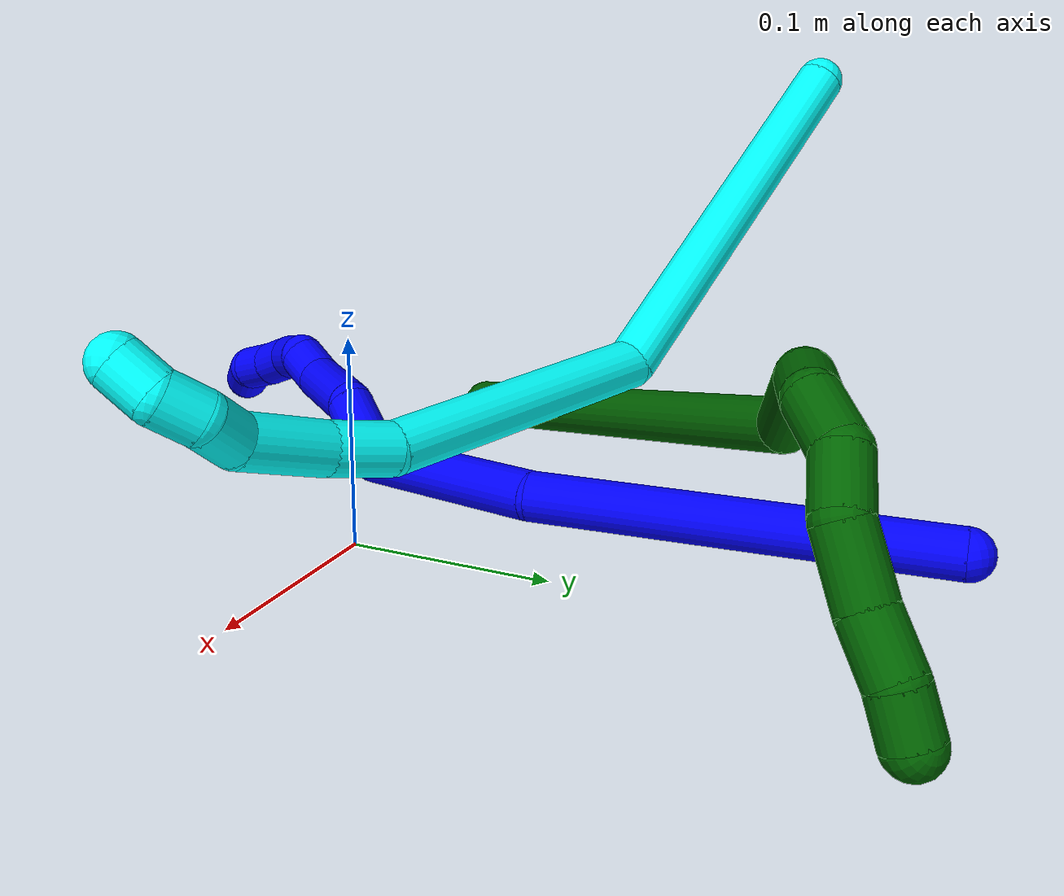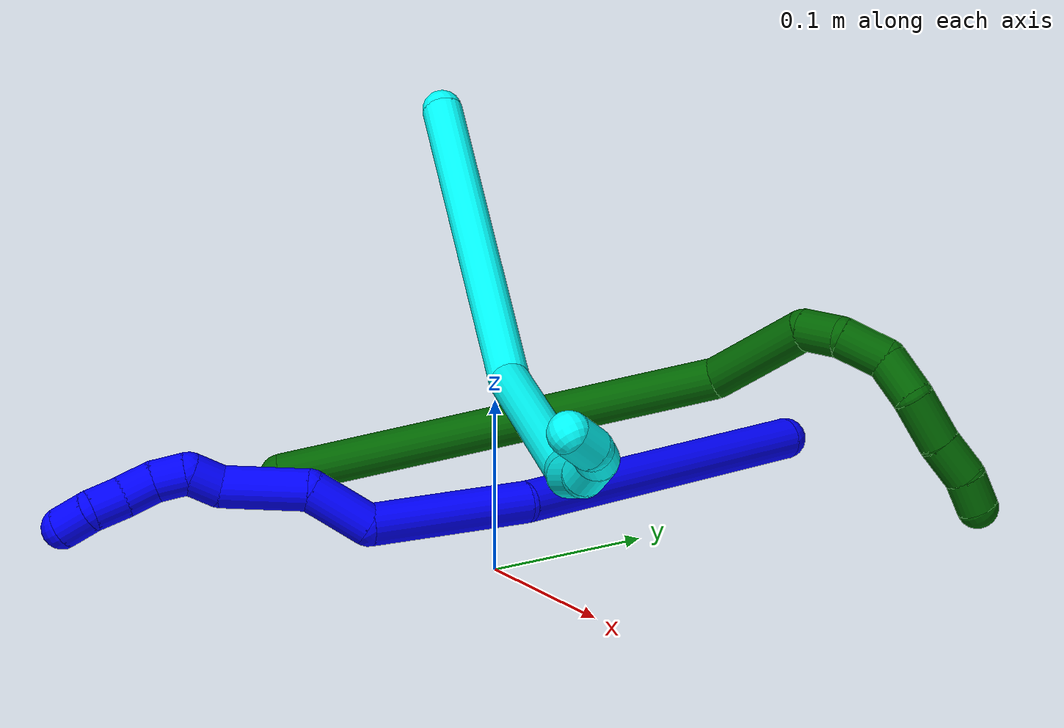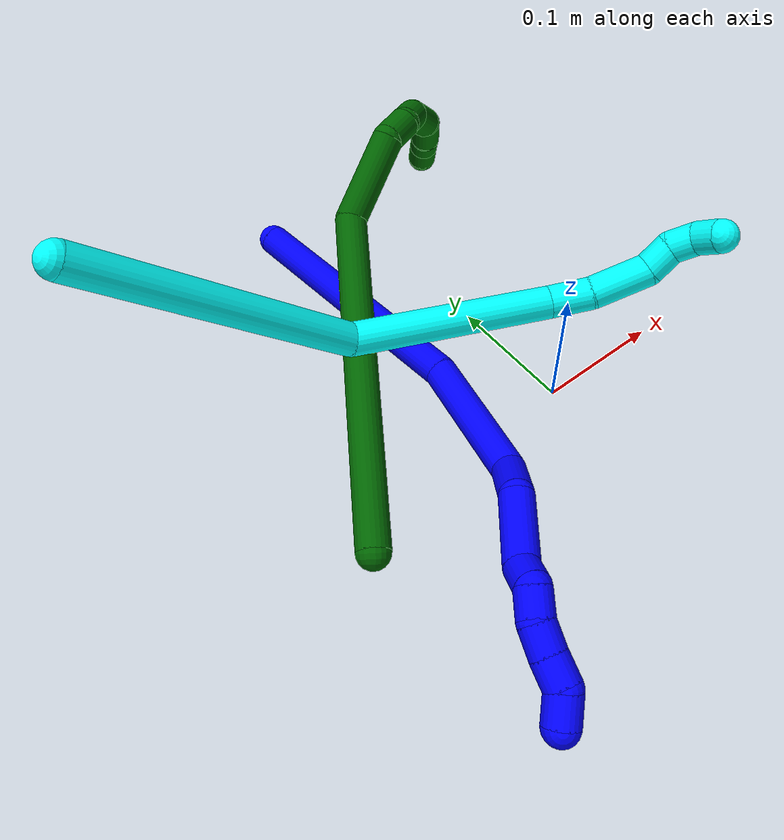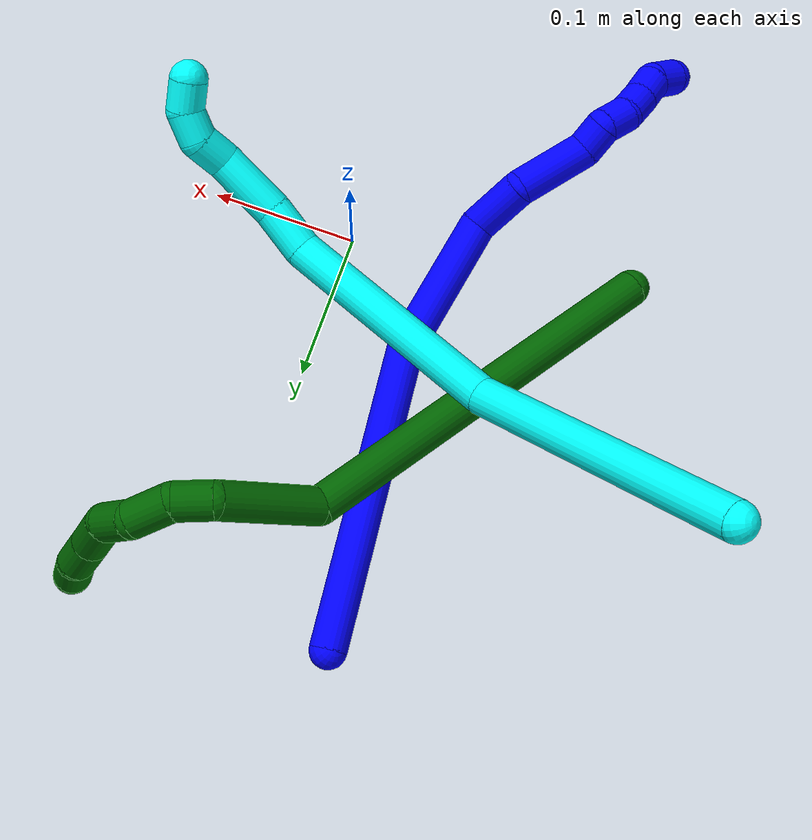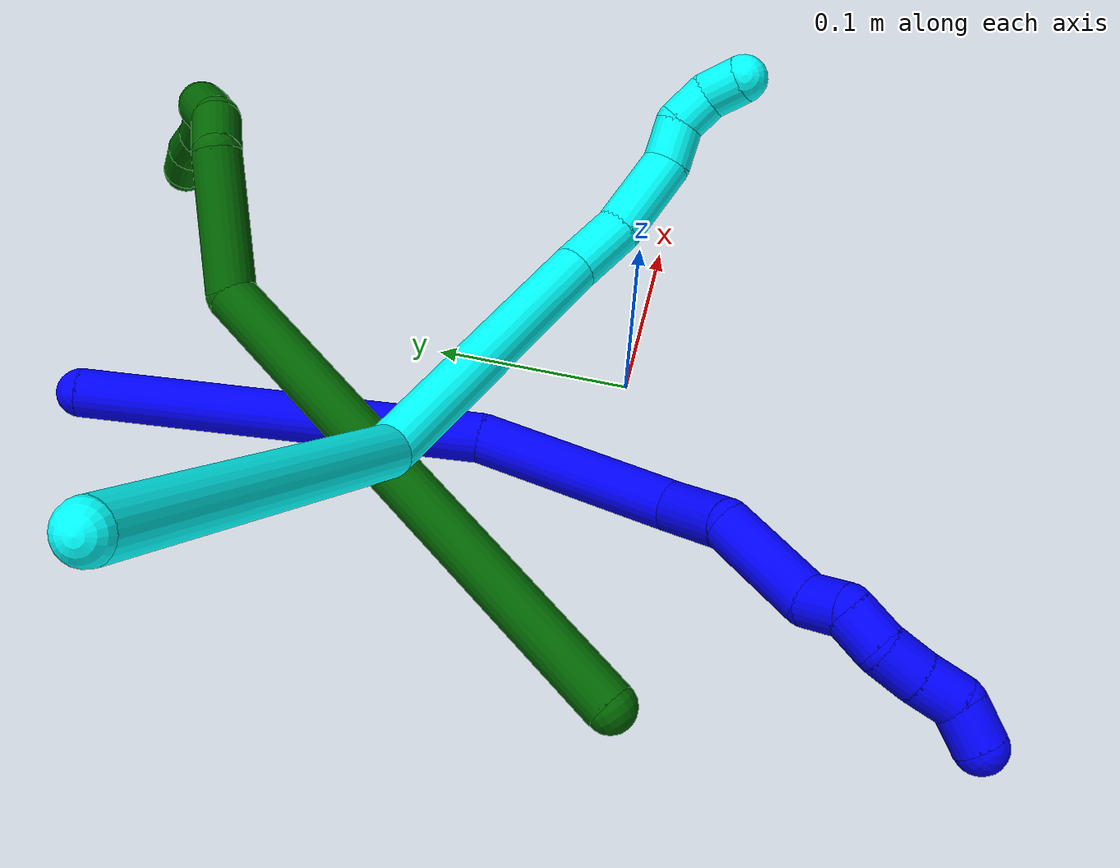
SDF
<sdf version="1.7">
 <world name="default">
  <model name="1">
   <static>0</static>
   <link name="1">
    <collision name="collision-cylinder-e_1_1_4">
     <pose>0.017731 -0.095347 0.035401 1.21529 0.172601 0.120183</pose>
     <geometry><cylinder><radius>0.0125</radius><length>0.206483</length></cylinder></geometry>
     <surface>
      <friction><ode><mu>1.16</mu><mu2>1.16</mu2><slip1>0</slip1><slip2>0</slip2></ode></friction>
      <contact><ode><kp>1e+06</kp><kd>1</kd><max_vel>0</max_vel><min_depth>0.001</min_depth></ode></contact>
     </surface>
    </collision>
    <visual name="visual-cylinder-e_1_1_4">
     <pose>0.017731 -0.095347 0.035401 1.21529 0.172601 0.120183</pose>
     <geometry><cylinder><radius>0.0125</radius><length>0.206483</length></cylinder></geometry>
     <material><ambient>0 0 1 1</ambient></material>
    </visual>
    <collision name="collision-cylinder-e_2_4_5">
     <pose>0.031069 -0.235644 0.091899 1.13198 -0.088247 -0.056088</pose>
     <geometry><cylinder><radius>0.0125</radius><length>0.099696</length></cylinder></geometry>
     <surface>
      <friction><ode><mu>1.16</mu><mu2>1.16</mu2><slip1>0</slip1><slip2>0</slip2></ode></friction>
      <contact><ode><kp>1e+06</kp><kd>1</kd><max_vel>0</max_vel><min_depth>0.001</min_depth></ode></contact>
     </surface>
    </collision>
    <visual name="visual-cylinder-e_2_4_5">
     <pose>0.031069 -0.235644 0.091899 1.13198 -0.088247 -0.056088</pose>
     <geometry><cylinder><radius>0.0125</radius><length>0.099696</length></cylinder></geometry>
     <material><ambient>0 0 1 1</ambient></material>
    </visual>
    <collision name="collision-cylinder-e_3_5_6">
     <pose>0.022548 -0.288642 0.13057 0.429436 -0.210375 -0.04604</pose>
     <geometry><cylinder><radius>0.0125</radius><length>0.039532</length></cylinder></geometry>
     <surface>
      <friction><ode><mu>1.16</mu><mu2>1.16</mu2><slip1>0</slip1><slip2>0</slip2></ode></friction>
      <contact><ode><kp>1e+06</kp><kd>1</kd><max_vel>0</max_vel><min_depth>0.001</min_depth></ode></contact>
     </surface>
    </collision>
    <visual name="visual-cylinder-e_3_5_6">
     <pose>0.022548 -0.288642 0.13057 0.429436 -0.210375 -0.04604</pose>
     <geometry><cylinder><radius>0.0125</radius><length>0.039532</length></cylinder></geometry>
     <material><ambient>0 0 1 1</ambient></material>
    </visual>
    <collision name="collision-cylinder-e_4_6_7">
     <pose>0.005068 -0.314291 0.162009 0.90361 -0.53746 -0.265711</pose>
     <geometry><cylinder><radius>0.0125</radius><length>0.052163</length></cylinder></geometry>
     <surface>
      <friction><ode><mu>1.16</mu><mu2>1.16</mu2><slip1>0</slip1><slip2>0</slip2></ode></friction>
      <contact><ode><kp>1e+06</kp><kd>1</kd><max_vel>0</max_vel><min_depth>0.001</min_depth></ode></contact>
     </surface>
    </collision>
    <visual name="visual-cylinder-e_4_6_7">
     <pose>0.005068 -0.314291 0.162009 0.90361 -0.53746 -0.265711</pose>
     <geometry><cylinder><radius>0.0125</radius><length>0.052163</length></cylinder></geometry>
     <material><ambient>0 0 1 1</ambient></material>
    </visual>
    <collision name="collision-cylinder-e_5_7_8">
     <pose>-0.009372 -0.337609 0.184198 0.601823 -0.107201 -0.033297</pose>
     <geometry><cylinder><radius>0.0125</radius><length>0.020318</length></cylinder></geometry>
     <surface>
      <friction><ode><mu>1.16</mu><mu2>1.16</mu2><slip1>0</slip1><slip2>0</slip2></ode></friction>
      <contact><ode><kp>1e+06</kp><kd>1</kd><max_vel>0</max_vel><min_depth>0.001</min_depth></ode></contact>
     </surface>
    </collision>
    <visual name="visual-cylinder-e_5_7_8">
     <pose>-0.009372 -0.337609 0.184198 0.601823 -0.107201 -0.033297</pose>
     <geometry><cylinder><radius>0.0125</radius><length>0.020318</length></cylinder></geometry>
     <material><ambient>0 0 1 1</ambient></material>
    </visual>
    <collision name="collision-cylinder-e_6_8_9">
     <pose>-0.01613 -0.351374 0.195424 1.22494 -0.585535 -0.417401</pose>
     <geometry><cylinder><radius>0.0125</radius><length>0.020524</length></cylinder></geometry>
     <surface>
      <friction><ode><mu>1.16</mu><mu2>1.16</mu2><slip1>0</slip1><slip2>0</slip2></ode></friction>
      <contact><ode><kp>1e+06</kp><kd>1</kd><max_vel>0</max_vel><min_depth>0.001</min_depth></ode></contact>
     </surface>
    </collision>
    <visual name="visual-cylinder-e_6_8_9">
     <pose>-0.01613 -0.351374 0.195424 1.22494 -0.585535 -0.417401</pose>
     <geometry><cylinder><radius>0.0125</radius><length>0.020524</length></cylinder></geometry>
     <material><ambient>0 0 1 1</ambient></material>
    </visual>
    <collision name="collision-cylinder-e_7_9_10">
     <pose>-0.025073 -0.368917 0.199347 1.46337 -0.330038 -0.29688</pose>
     <geometry><cylinder><radius>0.0125</radius><length>0.020192</length></cylinder></geometry>
     <surface>
      <friction><ode><mu>1.16</mu><mu2>1.16</mu2><slip1>0</slip1><slip2>0</slip2></ode></friction>
      <contact><ode><kp>1e+06</kp><kd>1</kd><max_vel>0</max_vel><min_depth>0.001</min_depth></ode></contact>
     </surface>
    </collision>
    <visual name="visual-cylinder-e_7_9_10">
     <pose>-0.025073 -0.368917 0.199347 1.46337 -0.330038 -0.29688</pose>
     <geometry><cylinder><radius>0.0125</radius><length>0.020192</length></cylinder></geometry>
     <material><ambient>0 0 1 1</ambient></material>
    </visual>
    <collision name="collision-cylinder-e_8_10_11">
     <pose>-0.030863 -0.388068 0.202064 1.39728 -0.251373 -0.211472</pose>
     <geometry><cylinder><radius>0.0125</radius><length>0.020241</length></cylinder></geometry>
     <surface>
      <friction><ode><mu>1.16</mu><mu2>1.16</mu2><slip1>0</slip1><slip2>0</slip2></ode></friction>
      <contact><ode><kp>1e+06</kp><kd>1</kd><max_vel>0</max_vel><min_depth>0.001</min_depth></ode></contact>
     </surface>
    </collision>
    <visual name="visual-cylinder-e_8_10_11">
     <pose>-0.030863 -0.388068 0.202064 1.39728 -0.251373 -0.211472</pose>
     <geometry><cylinder><radius>0.0125</radius><length>0.020241</length></cylinder></geometry>
     <material><ambient>0 0 1 1</ambient></material>
    </visual>
    <collision name="collision-cylinder-e_9_11_2">
     <pose>-0.040684 -0.405158 0.203509 1.60405 -0.776213 -0.799793</pose>
     <geometry><cylinder><radius>0.0125</radius><length>0.02085</length></cylinder></geometry>
     <surface>
      <friction><ode><mu>1.16</mu><mu2>1.16</mu2><slip1>0</slip1><slip2>0</slip2></ode></friction>
      <contact><ode><kp>1e+06</kp><kd>1</kd><max_vel>0</max_vel><min_depth>0.001</min_depth></ode></contact>
     </surface>
    </collision>
    <visual name="visual-cylinder-e_9_11_2">
     <pose>-0.040684 -0.405158 0.203509 1.60405 -0.776213 -0.799793</pose>
     <geometry><cylinder><radius>0.0125</radius><length>0.02085</length></cylinder></geometry>
     <material><ambient>0 0 1 1</ambient></material>
    </visual>
    <collision name="collision-sphere-2">
     <pose>-0.047987 -0.412593 0.203261 0 -0 0</pose>
     <geometry><sphere><radius>0.0125</radius></sphere></geometry>
     <surface>
      <friction><ode><mu>1.16</mu><mu2>1.16</mu2><slip1>0</slip1><slip2>0</slip2></ode></friction>
      <contact><ode><kp>1e+06</kp><kd>1</kd><max_vel>0</max_vel><min_depth>0.001</min_depth></ode></contact>
     </surface>
    </collision>
    <visual name="visual-sphere-2">
     <pose>-0.047987 -0.412593 0.203261 0 -0 0</pose>
     <geometry><sphere><radius>0.0125</radius></sphere></geometry>
     <material><ambient>0 0 1 1</ambient></material>
    </visual>
    <collision name="collision-sphere-11">
     <pose>-0.03338 -0.397724 0.203756 0 -0 0</pose>
     <geometry><sphere><radius>0.0125</radius></sphere></geometry>
     <surface>
      <friction><ode><mu>1.16</mu><mu2>1.16</mu2><slip1>0</slip1><slip2>0</slip2></ode></friction>
      <contact><ode><kp>1e+06</kp><kd>1</kd><max_vel>0</max_vel><min_depth>0.001</min_depth></ode></contact>
     </surface>
    </collision>
    <visual name="visual-sphere-11">
     <pose>-0.03338 -0.397724 0.203756 0 -0 0</pose>
     <geometry><sphere><radius>0.0125</radius></sphere></geometry>
     <material><ambient>0 0 1 1</ambient></material>
    </visual>
    <collision name="collision-sphere-10">
     <pose>-0.028345 -0.378413 0.200371 0 -0 0</pose>
     <geometry><sphere><radius>0.0125</radius></sphere></geometry>
     <surface>
      <friction><ode><mu>1.16</mu><mu2>1.16</mu2><slip1>0</slip1><slip2>0</slip2></ode></friction>
      <contact><ode><kp>1e+06</kp><kd>1</kd><max_vel>0</max_vel><min_depth>0.001</min_depth></ode></contact>
     </surface>
    </collision>
    <visual name="visual-sphere-10">
     <pose>-0.028345 -0.378413 0.200371 0 -0 0</pose>
     <geometry><sphere><radius>0.0125</radius></sphere></geometry>
     <material><ambient>0 0 1 1</ambient></material>
    </visual>
    <collision name="collision-sphere-9">
     <pose>-0.021801 -0.35942 0.198323 0 -0 0</pose>
     <geometry><sphere><radius>0.0125</radius></sphere></geometry>
     <surface>
      <friction><ode><mu>1.16</mu><mu2>1.16</mu2><slip1>0</slip1><slip2>0</slip2></ode></friction>
      <contact><ode><kp>1e+06</kp><kd>1</kd><max_vel>0</max_vel><min_depth>0.001</min_depth></ode></contact>
     </surface>
    </collision>
    <visual name="visual-sphere-9">
     <pose>-0.021801 -0.35942 0.198323 0 -0 0</pose>
     <geometry><sphere><radius>0.0125</radius></sphere></geometry>
     <material><ambient>0 0 1 1</ambient></material>
    </visual>
    <collision name="collision-sphere-4">
     <pose>0.035462 -0.190695 0.070802 0 -0 0</pose>
     <geometry><sphere><radius>0.0125</radius></sphere></geometry>
     <surface>
      <friction><ode><mu>1.16</mu><mu2>1.16</mu2><slip1>0</slip1><slip2>0</slip2></ode></friction>
      <contact><ode><kp>1e+06</kp><kd>1</kd><max_vel>0</max_vel><min_depth>0.001</min_depth></ode></contact>
     </surface>
    </collision>
    <visual name="visual-sphere-4">
     <pose>0.035462 -0.190695 0.070802 0 -0 0</pose>
     <geometry><sphere><radius>0.0125</radius></sphere></geometry>
     <material><ambient>0 0 1 1</ambient></material>
    </visual>
    <collision name="collision-sphere-1">
     <geometry><sphere><radius>0.0125</radius></sphere></geometry>
     <surface>
      <friction><ode><mu>1.16</mu><mu2>1.16</mu2><slip1>0</slip1><slip2>0</slip2></ode></friction>
      <contact><ode><kp>1e+06</kp><kd>1</kd><max_vel>0</max_vel><min_depth>0.001</min_depth></ode></contact>
     </surface>
    </collision>
    <visual name="visual-sphere-1">
     <geometry><sphere><radius>0.0125</radius></sphere></geometry>
     <material><ambient>0 0 1 1</ambient></material>
    </visual>
    <collision name="collision-sphere-8">
     <pose>-0.010459 -0.343328 0.192524 0 -0 0</pose>
     <geometry><sphere><radius>0.0125</radius></sphere></geometry>
     <surface>
      <friction><ode><mu>1.16</mu><mu2>1.16</mu2><slip1>0</slip1><slip2>0</slip2></ode></friction>
      <contact><ode><kp>1e+06</kp><kd>1</kd><max_vel>0</max_vel><min_depth>0.001</min_depth></ode></contact>
     </surface>
    </collision>
    <visual name="visual-sphere-8">
     <pose>-0.010459 -0.343328 0.192524 0 -0 0</pose>
     <geometry><sphere><radius>0.0125</radius></sphere></geometry>
     <material><ambient>0 0 1 1</ambient></material>
    </visual>
    <collision name="collision-sphere-5">
     <pose>0.026676 -0.280594 0.112995 0 -0 0</pose>
     <geometry><sphere><radius>0.0125</radius></sphere></geometry>
     <surface>
      <friction><ode><mu>1.16</mu><mu2>1.16</mu2><slip1>0</slip1><slip2>0</slip2></ode></friction>
      <contact><ode><kp>1e+06</kp><kd>1</kd><max_vel>0</max_vel><min_depth>0.001</min_depth></ode></contact>
     </surface>
    </collision>
    <visual name="visual-sphere-5">
     <pose>0.026676 -0.280594 0.112995 0 -0 0</pose>
     <geometry><sphere><radius>0.0125</radius></sphere></geometry>
     <material><ambient>0 0 1 1</ambient></material>
    </visual>
    <collision name="collision-sphere-6">
     <pose>0.01842 -0.296691 0.148145 0 -0 0</pose>
     <geometry><sphere><radius>0.0125</radius></sphere></geometry>
     <surface>
      <friction><ode><mu>1.16</mu><mu2>1.16</mu2><slip1>0</slip1><slip2>0</slip2></ode></friction>
      <contact><ode><kp>1e+06</kp><kd>1</kd><max_vel>0</max_vel><min_depth>0.001</min_depth></ode></contact>
     </surface>
    </collision>
    <visual name="visual-sphere-6">
     <pose>0.01842 -0.296691 0.148145 0 -0 0</pose>
     <geometry><sphere><radius>0.0125</radius></sphere></geometry>
     <material><ambient>0 0 1 1</ambient></material>
    </visual>
    <collision name="collision-sphere-7">
     <pose>-0.008285 -0.331891 0.175872 0 -0 0</pose>
     <geometry><sphere><radius>0.0125</radius></sphere></geometry>
     <surface>
      <friction><ode><mu>1.16</mu><mu2>1.16</mu2><slip1>0</slip1><slip2>0</slip2></ode></friction>
      <contact><ode><kp>1e+06</kp><kd>1</kd><max_vel>0</max_vel><min_depth>0.001</min_depth></ode></contact>
     </surface>
    </collision>
    <visual name="visual-sphere-7">
     <pose>-0.008285 -0.331891 0.175872 0 -0 0</pose>
     <geometry><sphere><radius>0.0125</radius></sphere></geometry>
     <material><ambient>0 0 1 1</ambient></material>
    </visual>
    <inertial>
     <pose>0.010827 -0.217617 0.100392 0 -0 0</pose>
     <mass>0.5</mass>
     <inertia>
      <ixx>0.000909</ixx>
      <ixy>0</ixy>
      <ixz>0</ixz>
      <iyy>0.000372</iyy>
      <iyz>0</iyz>
      <izz>0.000689</izz>
     </inertia>
    </inertial>
   </link>
   <pose>-0.081181 0.267529 0.011889 0.417414 -0.36829 -0.084925</pose>
  </model>
  <model name="3">
   <static>0</static>
   <link name="3">
    <collision name="collision-cylinder-e_1_1_4">
     <pose>0.024106 0.023868 0.09809 -0.238688 0.2344 -0.028235</pose>
     <geometry><cylinder><radius>0.0125</radius><length>0.20758</length></cylinder></geometry>
     <surface>
      <friction><ode><mu>1.16</mu><mu2>1.16</mu2><slip1>0</slip1><slip2>0</slip2></ode></friction>
      <contact><ode><kp>1e+06</kp><kd>1</kd><max_vel>0</max_vel><min_depth>0.001</min_depth></ode></contact>
     </surface>
    </collision>
    <visual name="visual-cylinder-e_1_1_4">
     <pose>0.024106 0.023868 0.09809 -0.238688 0.2344 -0.028235</pose>
     <geometry><cylinder><radius>0.0125</radius><length>0.20758</length></cylinder></geometry>
     <material><ambient>0.003922 1 0.996078 1</ambient></material>
    </visual>
    <collision name="collision-cylinder-e_2_4_5">
     <pose>0.105239 0.052389 0.246114 -0.092914 0.849459 -0.042045</pose>
     <geometry><cylinder><radius>0.0125</radius><length>0.151883</length></cylinder></geometry>
     <surface>
      <friction><ode><mu>1.16</mu><mu2>1.16</mu2><slip1>0</slip1><slip2>0</slip2></ode></friction>
      <contact><ode><kp>1e+06</kp><kd>1</kd><max_vel>0</max_vel><min_depth>0.001</min_depth></ode></contact>
     </surface>
    </collision>
    <visual name="visual-cylinder-e_2_4_5">
     <pose>0.105239 0.052389 0.246114 -0.092914 0.849459 -0.042045</pose>
     <geometry><cylinder><radius>0.0125</radius><length>0.151883</length></cylinder></geometry>
     <material><ambient>0.003922 1 0.996078 1</ambient></material>
    </visual>
    <collision name="collision-cylinder-e_3_5_6">
     <pose>0.176905 0.059238 0.302499 -0.328184 1.13518 -0.210361</pose>
     <geometry><cylinder><radius>0.0125</radius><length>0.032296</length></cylinder></geometry>
     <surface>
      <friction><ode><mu>1.16</mu><mu2>1.16</mu2><slip1>0</slip1><slip2>0</slip2></ode></friction>
      <contact><ode><kp>1e+06</kp><kd>1</kd><max_vel>0</max_vel><min_depth>0.001</min_depth></ode></contact>
     </surface>
    </collision>
    <visual name="visual-cylinder-e_3_5_6">
     <pose>0.176905 0.059238 0.302499 -0.328184 1.13518 -0.210361</pose>
     <geometry><cylinder><radius>0.0125</radius><length>0.032296</length></cylinder></geometry>
     <material><ambient>0.003922 1 0.996078 1</ambient></material>
    </visual>
    <collision name="collision-cylinder-e_4_6_7">
     <pose>0.212443 0.060429 0.317089 0.122892 1.19685 0.083847</pose>
     <geometry><cylinder><radius>0.0125</radius><length>0.044899</length></cylinder></geometry>
     <surface>
      <friction><ode><mu>1.16</mu><mu2>1.16</mu2><slip1>0</slip1><slip2>0</slip2></ode></friction>
      <contact><ode><kp>1e+06</kp><kd>1</kd><max_vel>0</max_vel><min_depth>0.001</min_depth></ode></contact>
     </surface>
    </collision>
    <visual name="visual-cylinder-e_4_6_7">
     <pose>0.212443 0.060429 0.317089 0.122892 1.19685 0.083847</pose>
     <geometry><cylinder><radius>0.0125</radius><length>0.044899</length></cylinder></geometry>
     <material><ambient>0.003922 1 0.996078 1</ambient></material>
    </visual>
    <collision name="collision-cylinder-e_5_7_8">
     <pose>0.243834 0.055376 0.325927 1.3998 1.19763 1.04316</pose>
     <geometry><cylinder><radius>0.0125</radius><length>0.022537</length></cylinder></geometry>
     <surface>
      <friction><ode><mu>1.16</mu><mu2>1.16</mu2><slip1>0</slip1><slip2>0</slip2></ode></friction>
      <contact><ode><kp>1e+06</kp><kd>1</kd><max_vel>0</max_vel><min_depth>0.001</min_depth></ode></contact>
     </surface>
    </collision>
    <visual name="visual-cylinder-e_5_7_8">
     <pose>0.243834 0.055376 0.325927 1.3998 1.19763 1.04316</pose>
     <geometry><cylinder><radius>0.0125</radius><length>0.022537</length></cylinder></geometry>
     <material><ambient>0.003922 1 0.996078 1</ambient></material>
    </visual>
    <collision name="collision-cylinder-e_6_8_9">
     <pose>0.264399 0.052777 0.326421 -1.7109 1.42641 -1.56647</pose>
     <geometry><cylinder><radius>0.0125</radius><length>0.020355</length></cylinder></geometry>
     <surface>
      <friction><ode><mu>1.16</mu><mu2>1.16</mu2><slip1>0</slip1><slip2>0</slip2></ode></friction>
      <contact><ode><kp>1e+06</kp><kd>1</kd><max_vel>0</max_vel><min_depth>0.001</min_depth></ode></contact>
     </surface>
    </collision>
    <visual name="visual-cylinder-e_6_8_9">
     <pose>0.264399 0.052777 0.326421 -1.7109 1.42641 -1.56647</pose>
     <geometry><cylinder><radius>0.0125</radius><length>0.020355</length></cylinder></geometry>
     <material><ambient>0.003922 1 0.996078 1</ambient></material>
    </visual>
    <collision name="collision-cylinder-e_7_9_2">
     <pose>0.282674 0.058644 0.322006 -2.33223 0.931244 -1.72978</pose>
     <geometry><cylinder><radius>0.0125</radius><length>0.020449</length></cylinder></geometry>
     <surface>
      <friction><ode><mu>1.16</mu><mu2>1.16</mu2><slip1>0</slip1><slip2>0</slip2></ode></friction>
      <contact><ode><kp>1e+06</kp><kd>1</kd><max_vel>0</max_vel><min_depth>0.001</min_depth></ode></contact>
     </surface>
    </collision>
    <visual name="visual-cylinder-e_7_9_2">
     <pose>0.282674 0.058644 0.322006 -2.33223 0.931244 -1.72978</pose>
     <geometry><cylinder><radius>0.0125</radius><length>0.020449</length></cylinder></geometry>
     <material><ambient>0.003922 1 0.996078 1</ambient></material>
    </visual>
    <collision name="collision-sphere-2">
     <pose>0.290878 0.063062 0.317796 0 -0 0</pose>
     <geometry><sphere><radius>0.0125</radius></sphere></geometry>
     <surface>
      <friction><ode><mu>1.16</mu><mu2>1.16</mu2><slip1>0</slip1><slip2>0</slip2></ode></friction>
      <contact><ode><kp>1e+06</kp><kd>1</kd><max_vel>0</max_vel><min_depth>0.001</min_depth></ode></contact>
     </surface>
    </collision>
    <visual name="visual-sphere-2">
     <pose>0.290878 0.063062 0.317796 0 -0 0</pose>
     <geometry><sphere><radius>0.0125</radius></sphere></geometry>
     <material><ambient>0.003922 1 0.996078 1</ambient></material>
    </visual>
    <collision name="collision-sphere-9">
     <pose>0.274471 0.054227 0.326217 0 -0 0</pose>
     <geometry><sphere><radius>0.0125</radius></sphere></geometry>
     <surface>
      <friction><ode><mu>1.16</mu><mu2>1.16</mu2><slip1>0</slip1><slip2>0</slip2></ode></friction>
      <contact><ode><kp>1e+06</kp><kd>1</kd><max_vel>0</max_vel><min_depth>0.001</min_depth></ode></contact>
     </surface>
    </collision>
    <visual name="visual-sphere-9">
     <pose>0.274471 0.054227 0.326217 0 -0 0</pose>
     <geometry><sphere><radius>0.0125</radius></sphere></geometry>
     <material><ambient>0.003922 1 0.996078 1</ambient></material>
    </visual>
    <collision name="collision-sphere-4">
     <pose>0.048212 0.047736 0.19618 0 -0 0</pose>
     <geometry><sphere><radius>0.0125</radius></sphere></geometry>
     <surface>
      <friction><ode><mu>1.16</mu><mu2>1.16</mu2><slip1>0</slip1><slip2>0</slip2></ode></friction>
      <contact><ode><kp>1e+06</kp><kd>1</kd><max_vel>0</max_vel><min_depth>0.001</min_depth></ode></contact>
     </surface>
    </collision>
    <visual name="visual-sphere-4">
     <pose>0.048212 0.047736 0.19618 0 -0 0</pose>
     <geometry><sphere><radius>0.0125</radius></sphere></geometry>
     <material><ambient>0.003922 1 0.996078 1</ambient></material>
    </visual>
    <collision name="collision-sphere-1">
     <geometry><sphere><radius>0.0125</radius></sphere></geometry>
     <surface>
      <friction><ode><mu>1.16</mu><mu2>1.16</mu2><slip1>0</slip1><slip2>0</slip2></ode></friction>
      <contact><ode><kp>1e+06</kp><kd>1</kd><max_vel>0</max_vel><min_depth>0.001</min_depth></ode></contact>
     </surface>
    </collision>
    <visual name="visual-sphere-1">
     <geometry><sphere><radius>0.0125</radius></sphere></geometry>
     <material><ambient>0.003922 1 0.996078 1</ambient></material>
    </visual>
    <collision name="collision-sphere-8">
     <pose>0.254328 0.051327 0.326626 0 -0 0</pose>
     <geometry><sphere><radius>0.0125</radius></sphere></geometry>
     <surface>
      <friction><ode><mu>1.16</mu><mu2>1.16</mu2><slip1>0</slip1><slip2>0</slip2></ode></friction>
      <contact><ode><kp>1e+06</kp><kd>1</kd><max_vel>0</max_vel><min_depth>0.001</min_depth></ode></contact>
     </surface>
    </collision>
    <visual name="visual-sphere-8">
     <pose>0.254328 0.051327 0.326626 0 -0 0</pose>
     <geometry><sphere><radius>0.0125</radius></sphere></geometry>
     <material><ambient>0.003922 1 0.996078 1</ambient></material>
    </visual>
    <collision name="collision-sphere-5">
     <pose>0.162265 0.057042 0.296049 0 -0 0</pose>
     <geometry><sphere><radius>0.0125</radius></sphere></geometry>
     <surface>
      <friction><ode><mu>1.16</mu><mu2>1.16</mu2><slip1>0</slip1><slip2>0</slip2></ode></friction>
      <contact><ode><kp>1e+06</kp><kd>1</kd><max_vel>0</max_vel><min_depth>0.001</min_depth></ode></contact>
     </surface>
    </collision>
    <visual name="visual-sphere-5">
     <pose>0.162265 0.057042 0.296049 0 -0 0</pose>
     <geometry><sphere><radius>0.0125</radius></sphere></geometry>
     <material><ambient>0.003922 1 0.996078 1</ambient></material>
    </visual>
    <collision name="collision-sphere-6">
     <pose>0.191545 0.061434 0.30895 0 -0 0</pose>
     <geometry><sphere><radius>0.0125</radius></sphere></geometry>
     <surface>
      <friction><ode><mu>1.16</mu><mu2>1.16</mu2><slip1>0</slip1><slip2>0</slip2></ode></friction>
      <contact><ode><kp>1e+06</kp><kd>1</kd><max_vel>0</max_vel><min_depth>0.001</min_depth></ode></contact>
     </surface>
    </collision>
    <visual name="visual-sphere-6">
     <pose>0.191545 0.061434 0.30895 0 -0 0</pose>
     <geometry><sphere><radius>0.0125</radius></sphere></geometry>
     <material><ambient>0.003922 1 0.996078 1</ambient></material>
    </visual>
    <collision name="collision-sphere-7">
     <pose>0.233341 0.059424 0.325227 0 -0 0</pose>
     <geometry><sphere><radius>0.0125</radius></sphere></geometry>
     <surface>
      <friction><ode><mu>1.16</mu><mu2>1.16</mu2><slip1>0</slip1><slip2>0</slip2></ode></friction>
      <contact><ode><kp>1e+06</kp><kd>1</kd><max_vel>0</max_vel><min_depth>0.001</min_depth></ode></contact>
     </surface>
    </collision>
    <visual name="visual-sphere-7">
     <pose>0.233341 0.059424 0.325227 0 -0 0</pose>
     <geometry><sphere><radius>0.0125</radius></sphere></geometry>
     <material><ambient>0.003922 1 0.996078 1</ambient></material>
    </visual>
    <inertial>
     <pose>0.105795 0.042119 0.204646 0 -0 0</pose>
     <mass>0.5</mass>
     <inertia>
      <ixx>0.000928</ixx>
      <ixy>0</ixy>
      <ixz>0</ixz>
      <iyy>0.001023</iyy>
      <iyz>0</iyz>
      <izz>-0.000583</izz>
     </inertia>
    </inertial>
   </link>
   <pose>-0.273225 0.140379 0.199255 -2.66251 -0.62237 -0.624093</pose>
  </model>
  <model name="6">
   <static>0</static>
   <link name="6">
    <collision name="collision-cylinder-e_1_1_4">
     <pose>0.013864 0.039406 0.127056 -0.300738 0.103844 -0.015748</pose>
     <geometry><cylinder><radius>0.0125</radius><length>0.267494</length></cylinder></geometry>
     <surface>
      <friction><ode><mu>1.16</mu><mu2>1.16</mu2><slip1>0</slip1><slip2>0</slip2></ode></friction>
      <contact><ode><kp>1e+06</kp><kd>1</kd><max_vel>0</max_vel><min_depth>0.001</min_depth></ode></contact>
     </surface>
    </collision>
    <visual name="visual-cylinder-e_1_1_4">
     <pose>0.013864 0.039406 0.127056 -0.300738 0.103844 -0.015748</pose>
     <geometry><cylinder><radius>0.0125</radius><length>0.267494</length></cylinder></geometry>
     <material><ambient>0 0.392157 0.003922 1</ambient></material>
    </visual>
    <collision name="collision-cylinder-e_2_4_5">
     <pose>0.040338 0.068086 0.285917 0.325267 0.359374 0.059592</pose>
     <geometry><cylinder><radius>0.0125</radius><length>0.071711</length></cylinder></geometry>
     <surface>
      <friction><ode><mu>1.16</mu><mu2>1.16</mu2><slip1>0</slip1><slip2>0</slip2></ode></friction>
      <contact><ode><kp>1e+06</kp><kd>1</kd><max_vel>0</max_vel><min_depth>0.001</min_depth></ode></contact>
     </surface>
    </collision>
    <visual name="visual-cylinder-e_2_4_5">
     <pose>0.040338 0.068086 0.285917 0.325267 0.359374 0.059592</pose>
     <geometry><cylinder><radius>0.0125</radius><length>0.071711</length></cylinder></geometry>
     <material><ambient>0 0.392157 0.003922 1</ambient></material>
    </visual>
    <collision name="collision-cylinder-e_3_5_6">
     <pose>0.061752 0.059278 0.326625 -0.212262 0.768502 -0.086099</pose>
     <geometry><cylinder><radius>0.0125</radius><length>0.025335</length></cylinder></geometry>
     <surface>
      <friction><ode><mu>1.16</mu><mu2>1.16</mu2><slip1>0</slip1><slip2>0</slip2></ode></friction>
      <contact><ode><kp>1e+06</kp><kd>1</kd><max_vel>0</max_vel><min_depth>0.001</min_depth></ode></contact>
     </surface>
    </collision>
    <visual name="visual-cylinder-e_3_5_6">
     <pose>0.061752 0.059278 0.326625 -0.212262 0.768502 -0.086099</pose>
     <geometry><cylinder><radius>0.0125</radius><length>0.025335</length></cylinder></geometry>
     <material><ambient>0 0.392157 0.003922 1</ambient></material>
    </visual>
    <collision name="collision-cylinder-e_4_6_7">
     <pose>0.079054 0.069809 0.343923 -0.798202 0.615045 -0.266299</pose>
     <geometry><cylinder><radius>0.0125</radius><length>0.02945</length></cylinder></geometry>
     <surface>
      <friction><ode><mu>1.16</mu><mu2>1.16</mu2><slip1>0</slip1><slip2>0</slip2></ode></friction>
      <contact><ode><kp>1e+06</kp><kd>1</kd><max_vel>0</max_vel><min_depth>0.001</min_depth></ode></contact>
     </surface>
    </collision>
    <visual name="visual-cylinder-e_4_6_7">
     <pose>0.079054 0.069809 0.343923 -0.798202 0.615045 -0.266299</pose>
     <geometry><cylinder><radius>0.0125</radius><length>0.02945</length></cylinder></geometry>
     <material><ambient>0 0.392157 0.003922 1</ambient></material>
    </visual>
    <collision name="collision-cylinder-e_5_7_8">
     <pose>0.098199 0.086571 0.353891 -1.38005 0.908716 -0.766439</pose>
     <geometry><cylinder><radius>0.0125</radius><length>0.027003</length></cylinder></geometry>
     <surface>
      <friction><ode><mu>1.16</mu><mu2>1.16</mu2><slip1>0</slip1><slip2>0</slip2></ode></friction>
      <contact><ode><kp>1e+06</kp><kd>1</kd><max_vel>0</max_vel><min_depth>0.001</min_depth></ode></contact>
     </surface>
    </collision>
    <visual name="visual-cylinder-e_5_7_8">
     <pose>0.098199 0.086571 0.353891 -1.38005 0.908716 -0.766439</pose>
     <geometry><cylinder><radius>0.0125</radius><length>0.027003</length></cylinder></geometry>
     <material><ambient>0 0.392157 0.003922 1</ambient></material>
    </visual>
    <collision name="collision-cylinder-e_6_8_9">
     <pose>0.116226 0.108759 0.35523 -1.58753 0.483872 -0.491717</pose>
     <geometry><cylinder><radius>0.0125</radius><length>0.031721</length></cylinder></geometry>
     <surface>
      <friction><ode><mu>1.16</mu><mu2>1.16</mu2><slip1>0</slip1><slip2>0</slip2></ode></friction>
      <contact><ode><kp>1e+06</kp><kd>1</kd><max_vel>0</max_vel><min_depth>0.001</min_depth></ode></contact>
     </surface>
    </collision>
    <visual name="visual-cylinder-e_6_8_9">
     <pose>0.116226 0.108759 0.35523 -1.58753 0.483872 -0.491717</pose>
     <geometry><cylinder><radius>0.0125</radius><length>0.031721</length></cylinder></geometry>
     <material><ambient>0 0.392157 0.003922 1</ambient></material>
    </visual>
    <collision name="collision-cylinder-e_7_9_10">
     <pose>0.129122 0.134577 0.356393 -1.45268 0.435359 -0.388033</pose>
     <geometry><cylinder><radius>0.0125</radius><length>0.026166</length></cylinder></geometry>
     <surface>
      <friction><ode><mu>1.16</mu><mu2>1.16</mu2><slip1>0</slip1><slip2>0</slip2></ode></friction>
      <contact><ode><kp>1e+06</kp><kd>1</kd><max_vel>0</max_vel><min_depth>0.001</min_depth></ode></contact>
     </surface>
    </collision>
    <visual name="visual-cylinder-e_7_9_10">
     <pose>0.129122 0.134577 0.356393 -1.45268 0.435359 -0.388033</pose>
     <geometry><cylinder><radius>0.0125</radius><length>0.026166</length></cylinder></geometry>
     <material><ambient>0 0.392157 0.003922 1</ambient></material>
    </visual>
    <collision name="collision-cylinder-e_8_10_2">
     <pose>0.138684 0.155987 0.356241 -1.73031 0.39301 -0.459083</pose>
     <geometry><cylinder><radius>0.0125</radius><length>0.021119</length></cylinder></geometry>
     <surface>
      <friction><ode><mu>1.16</mu><mu2>1.16</mu2><slip1>0</slip1><slip2>0</slip2></ode></friction>
      <contact><ode><kp>1e+06</kp><kd>1</kd><max_vel>0</max_vel><min_depth>0.001</min_depth></ode></contact>
     </surface>
    </collision>
    <visual name="visual-cylinder-e_8_10_2">
     <pose>0.138684 0.155987 0.356241 -1.73031 0.39301 -0.459083</pose>
     <geometry><cylinder><radius>0.0125</radius><length>0.021119</length></cylinder></geometry>
     <material><ambient>0 0.392157 0.003922 1</ambient></material>
    </visual>
    <collision name="collision-sphere-2">
     <pose>0.142728 0.165618 0.354692 0 -0 0</pose>
     <geometry><sphere><radius>0.0125</radius></sphere></geometry>
     <surface>
      <friction><ode><mu>1.16</mu><mu2>1.16</mu2><slip1>0</slip1><slip2>0</slip2></ode></friction>
      <contact><ode><kp>1e+06</kp><kd>1</kd><max_vel>0</max_vel><min_depth>0.001</min_depth></ode></contact>
     </surface>
    </collision>
    <visual name="visual-sphere-2">
     <pose>0.142728 0.165618 0.354692 0 -0 0</pose>
     <geometry><sphere><radius>0.0125</radius></sphere></geometry>
     <material><ambient>0 0.392157 0.003922 1</ambient></material>
    </visual>
    <collision name="collision-sphere-10">
     <pose>0.13464 0.146357 0.35779 0 -0 0</pose>
     <geometry><sphere><radius>0.0125</radius></sphere></geometry>
     <surface>
      <friction><ode><mu>1.16</mu><mu2>1.16</mu2><slip1>0</slip1><slip2>0</slip2></ode></friction>
      <contact><ode><kp>1e+06</kp><kd>1</kd><max_vel>0</max_vel><min_depth>0.001</min_depth></ode></contact>
     </surface>
    </collision>
    <visual name="visual-sphere-10">
     <pose>0.13464 0.146357 0.35779 0 -0 0</pose>
     <geometry><sphere><radius>0.0125</radius></sphere></geometry>
     <material><ambient>0 0.392157 0.003922 1</ambient></material>
    </visual>
    <collision name="collision-sphere-9">
     <pose>0.123604 0.122797 0.354995 0 -0 0</pose>
     <geometry><sphere><radius>0.0125</radius></sphere></geometry>
     <surface>
      <friction><ode><mu>1.16</mu><mu2>1.16</mu2><slip1>0</slip1><slip2>0</slip2></ode></friction>
      <contact><ode><kp>1e+06</kp><kd>1</kd><max_vel>0</max_vel><min_depth>0.001</min_depth></ode></contact>
     </surface>
    </collision>
    <visual name="visual-sphere-9">
     <pose>0.123604 0.122797 0.354995 0 -0 0</pose>
     <geometry><sphere><radius>0.0125</radius></sphere></geometry>
     <material><ambient>0 0.392157 0.003922 1</ambient></material>
    </visual>
    <collision name="collision-sphere-4">
     <pose>0.027728 0.078812 0.254112 0 -0 0</pose>
     <geometry><sphere><radius>0.0125</radius></sphere></geometry>
     <surface>
      <friction><ode><mu>1.16</mu><mu2>1.16</mu2><slip1>0</slip1><slip2>0</slip2></ode></friction>
      <contact><ode><kp>1e+06</kp><kd>1</kd><max_vel>0</max_vel><min_depth>0.001</min_depth></ode></contact>
     </surface>
    </collision>
    <visual name="visual-sphere-4">
     <pose>0.027728 0.078812 0.254112 0 -0 0</pose>
     <geometry><sphere><radius>0.0125</radius></sphere></geometry>
     <material><ambient>0 0.392157 0.003922 1</ambient></material>
    </visual>
    <collision name="collision-sphere-1">
     <geometry><sphere><radius>0.0125</radius></sphere></geometry>
     <surface>
      <friction><ode><mu>1.16</mu><mu2>1.16</mu2><slip1>0</slip1><slip2>0</slip2></ode></friction>
      <contact><ode><kp>1e+06</kp><kd>1</kd><max_vel>0</max_vel><min_depth>0.001</min_depth></ode></contact>
     </surface>
    </collision>
    <visual name="visual-sphere-1">
     <geometry><sphere><radius>0.0125</radius></sphere></geometry>
     <material><ambient>0 0.392157 0.003922 1</ambient></material>
    </visual>
    <collision name="collision-sphere-8">
     <pose>0.108847 0.094721 0.355465 0 -0 0</pose>
     <geometry><sphere><radius>0.0125</radius></sphere></geometry>
     <surface>
      <friction><ode><mu>1.16</mu><mu2>1.16</mu2><slip1>0</slip1><slip2>0</slip2></ode></friction>
      <contact><ode><kp>1e+06</kp><kd>1</kd><max_vel>0</max_vel><min_depth>0.001</min_depth></ode></contact>
     </surface>
    </collision>
    <visual name="visual-sphere-8">
     <pose>0.108847 0.094721 0.355465 0 -0 0</pose>
     <geometry><sphere><radius>0.0125</radius></sphere></geometry>
     <material><ambient>0 0.392157 0.003922 1</ambient></material>
    </visual>
    <collision name="collision-sphere-5">
     <pose>0.052948 0.05736 0.317722 0 -0 0</pose>
     <geometry><sphere><radius>0.0125</radius></sphere></geometry>
     <surface>
      <friction><ode><mu>1.16</mu><mu2>1.16</mu2><slip1>0</slip1><slip2>0</slip2></ode></friction>
      <contact><ode><kp>1e+06</kp><kd>1</kd><max_vel>0</max_vel><min_depth>0.001</min_depth></ode></contact>
     </surface>
    </collision>
    <visual name="visual-sphere-5">
     <pose>0.052948 0.05736 0.317722 0 -0 0</pose>
     <geometry><sphere><radius>0.0125</radius></sphere></geometry>
     <material><ambient>0 0.392157 0.003922 1</ambient></material>
    </visual>
    <collision name="collision-sphere-6">
     <pose>0.070557 0.061197 0.335528 0 -0 0</pose>
     <geometry><sphere><radius>0.0125</radius></sphere></geometry>
     <surface>
      <friction><ode><mu>1.16</mu><mu2>1.16</mu2><slip1>0</slip1><slip2>0</slip2></ode></friction>
      <contact><ode><kp>1e+06</kp><kd>1</kd><max_vel>0</max_vel><min_depth>0.001</min_depth></ode></contact>
     </surface>
    </collision>
    <visual name="visual-sphere-6">
     <pose>0.070557 0.061197 0.335528 0 -0 0</pose>
     <geometry><sphere><radius>0.0125</radius></sphere></geometry>
     <material><ambient>0 0.392157 0.003922 1</ambient></material>
    </visual>
    <collision name="collision-sphere-7">
     <pose>0.08755 0.078422 0.352317 0 -0 0</pose>
     <geometry><sphere><radius>0.0125</radius></sphere></geometry>
     <surface>
      <friction><ode><mu>1.16</mu><mu2>1.16</mu2><slip1>0</slip1><slip2>0</slip2></ode></friction>
      <contact><ode><kp>1e+06</kp><kd>1</kd><max_vel>0</max_vel><min_depth>0.001</min_depth></ode></contact>
     </surface>
    </collision>
    <visual name="visual-sphere-7">
     <pose>0.08755 0.078422 0.352317 0 -0 0</pose>
     <geometry><sphere><radius>0.0125</radius></sphere></geometry>
     <material><ambient>0 0.392157 0.003922 1</ambient></material>
    </visual>
    <inertial>
     <pose>0.04628 0.063169 0.221134 0 -0 0</pose>
     <mass>0.5</mass>
     <inertia>
      <ixx>0.001623</ixx>
      <ixy>0</ixy>
      <ixz>0</ixz>
      <iyy>0.001559</iyy>
      <iyz>0</iyz>
      <izz>-0.000634</izz>
     </inertia>
    </inertial>
   </link>
   <pose>-0.190677 -0.028744 0.011487 -0.981236 0.395221 -0.361987</pose>
  </model>
 </world>
</sdf>
